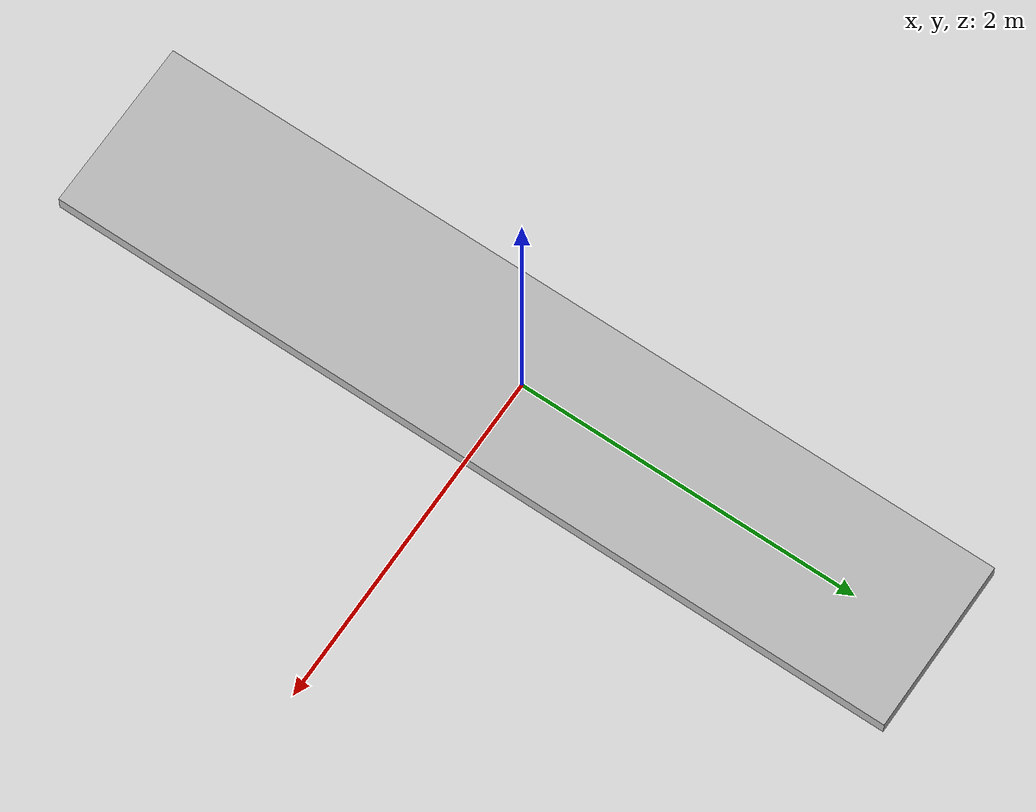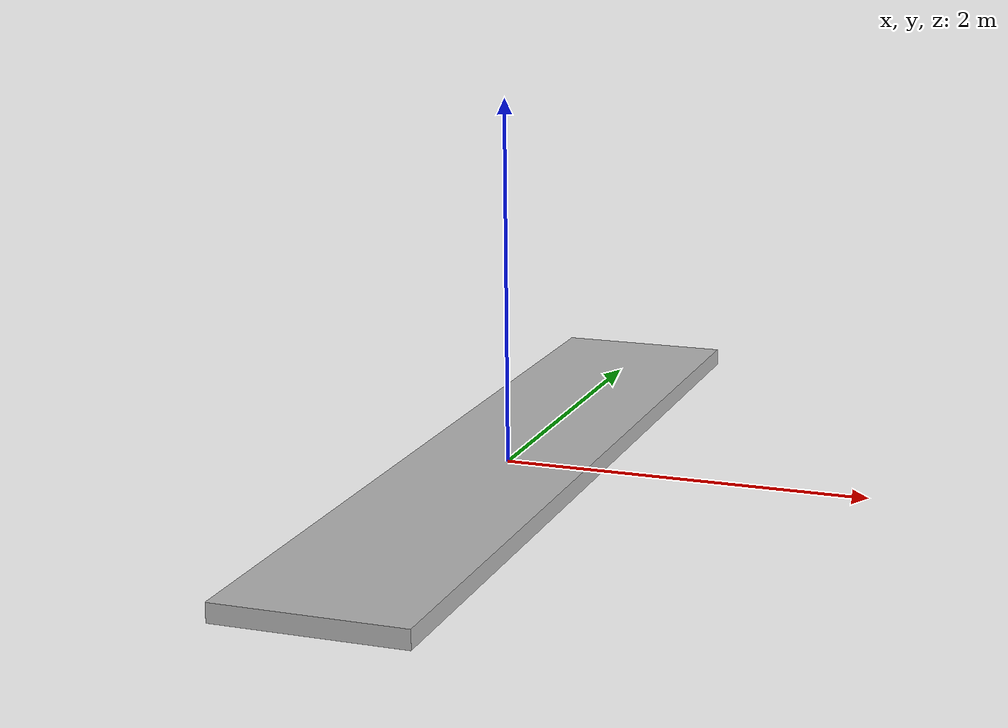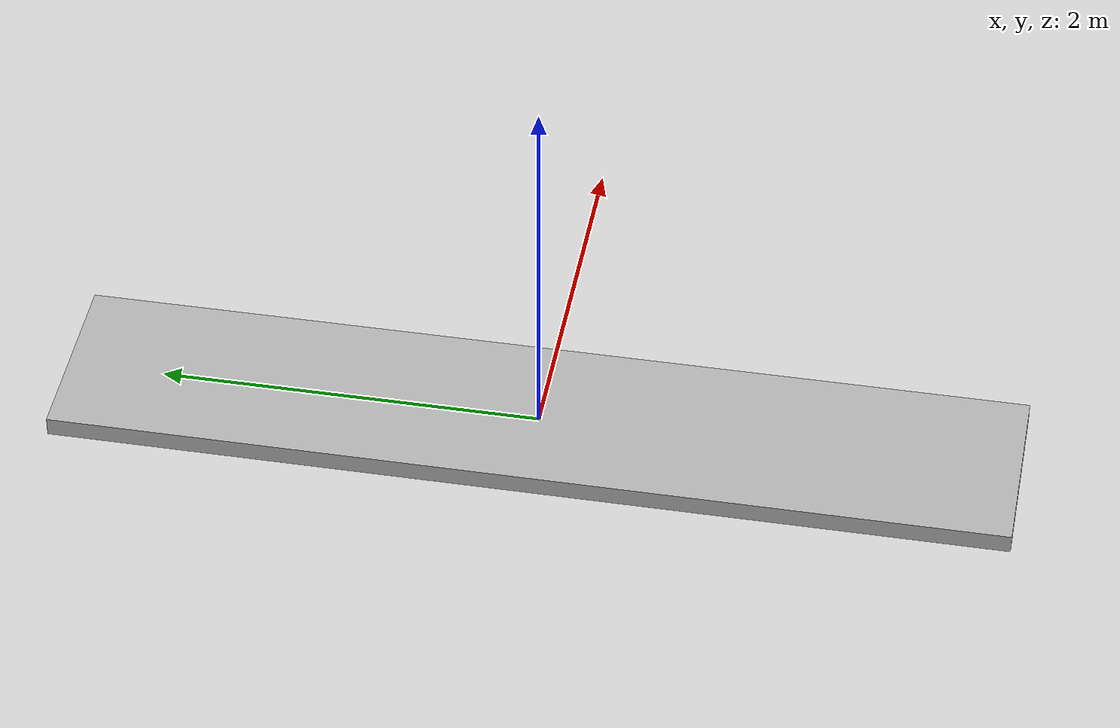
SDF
<?xml version="1.0" ?>
<sdf version="1.6">
    <model name="conveyor_belt">
        <link name="belt">
            <sensor name='conveyor_belt_contact' type='contact'>
                <update_rate>10</update_rate>
                <contact>
                    <collision>belt_collision</collision>
                </contact>
                <plugin name="conveyor_belt_plugin" filename="libConveyorBeltPlugin.so">
                    <belt_speed>0.2</belt_speed>
                </plugin>
            </sensor>
            <inertial>
                <mass>10</mass>
                <inertia>
                    <ixx>20.841</ixx>
                    <ixy>0</ixy>
                    <ixz>0</ixz>
                    <iyy>0.8417</iyy>
                    <iyz>0</iyz>
                    <izz>21.66667</izz>
                </inertia>
            </inertial>
            <collision name="belt_collision">
            <geometry>
                <box>
                <size>1 5 0.1</size>
                </box>
            </geometry>
            <surface>
                <friction>
                    <ode>
                        <mu>0.1</mu>
                        <mu2>0.1</mu2>
                    </ode>
                </friction>
            </surface>
            </collision>
            <visual name="visual">
            <geometry>
                <box>
                <size>1 5 0.1</size>
                </box>
            </geometry>
            </visual>
        </link>
    </model>
</sdf>
